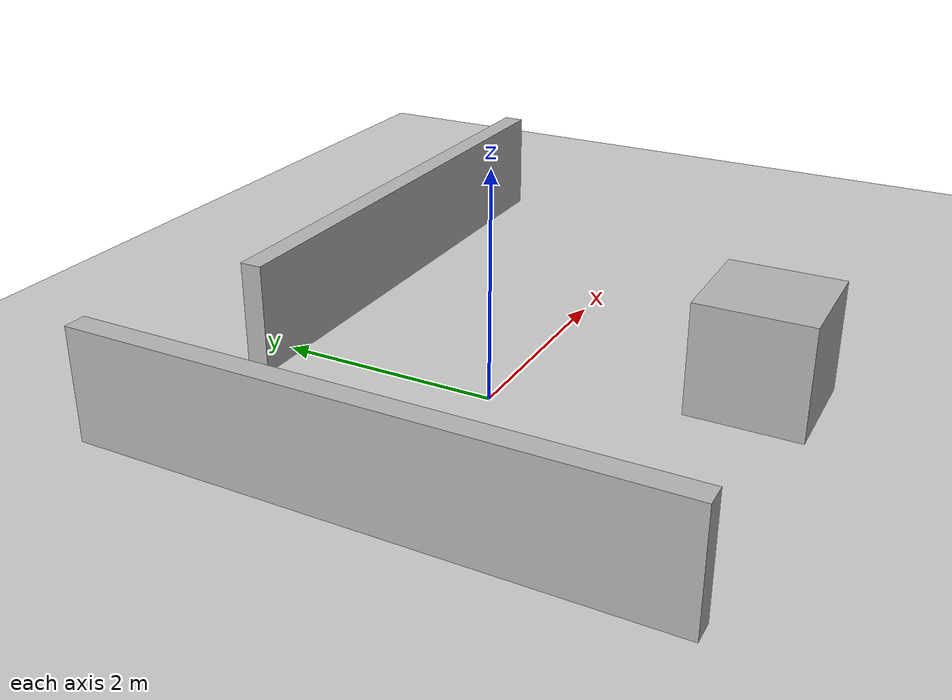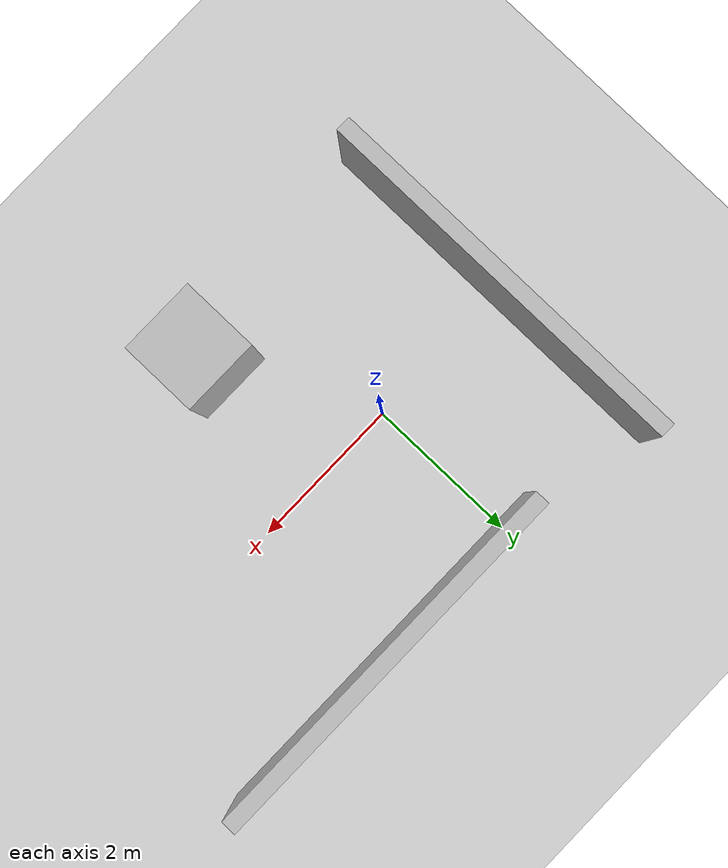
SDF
<?xml version="1.0" ?>
<sdf version="1.5">
  <world name="my_robot_world">

    <!-- 🌞 Light -->
    <include>
      <uri>model://sun</uri>
    </include>

    <!-- 🌍 Ground -->
    <include>
      <uri>model://ground_plane</uri>
    </include>

    <!-- 🧱 Wall 1 -->
    <model name="wall_1">
      <static>true</static>
      <link name="link">
        <collision name="collision">
          <geometry>
            <box>
              <size>5 0.2 1</size>
            </box>
          </geometry>
        </collision>
        <visual name="visual">
          <geometry>
            <box>
              <size>5 0.2 1</size>
            </box>
          </geometry>
        </visual>
      </link>
      <pose>2 2 0.5 0 0 0</pose>
    </model>

    <!-- 🧱 Wall 2 -->
    <model name="wall_2">
      <static>true</static>
      <link name="link">
        <collision name="collision">
          <geometry>
            <box>
              <size>0.2 5 1</size>
            </box>
          </geometry>
        </collision>
        <visual name="visual">
          <geometry>
            <box>
              <size>0.2 5 1</size>
            </box>
          </geometry>
        </visual>
      </link>
      <pose>-2 0 0.5 0 0 0</pose>
    </model>

    <!-- 🟦 Obstacle Box -->
    <model name="box_obstacle">
      <static>true</static>
      <link name="link">
        <collision name="collision">
          <geometry>
            <box>
              <size>1 1 1</size>
            </box>
          </geometry>
        </collision>
        <visual name="visual">
          <geometry>
            <box>
              <size>1 1 1</size>
            </box>
          </geometry>
        </visual>
      </link>
      <pose>1 -2 0.5 0 0 0</pose>
    </model>

  </world>
</sdf>
